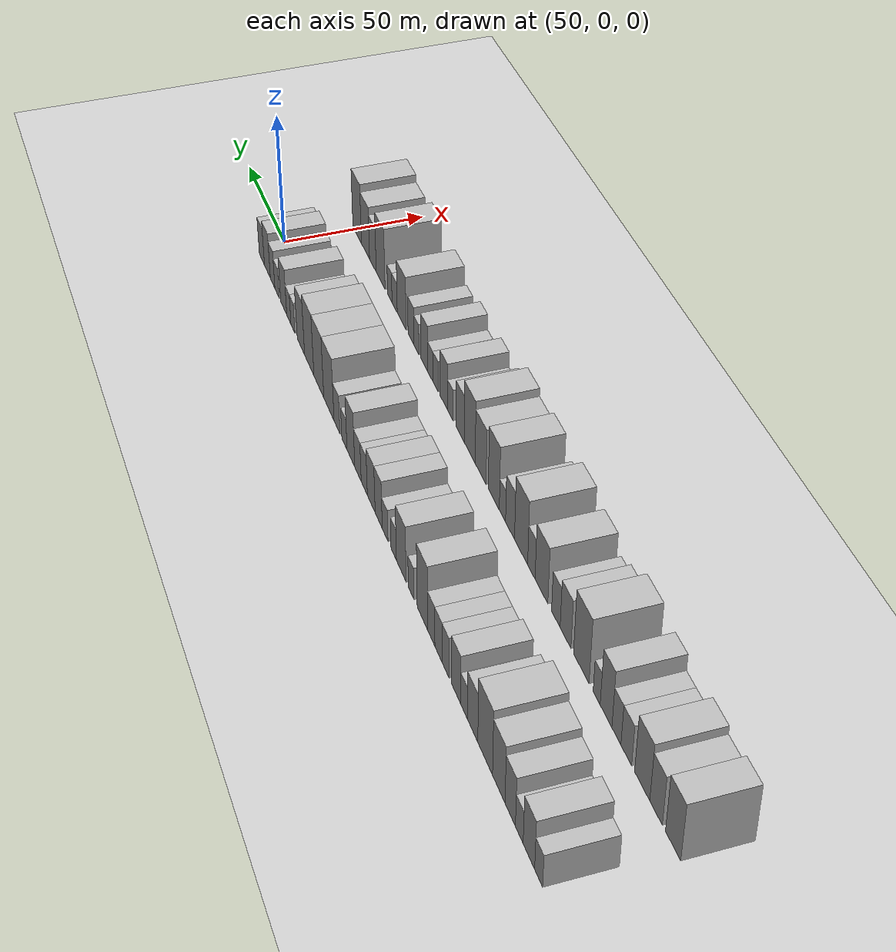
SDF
<sdf version="1.6">
 <world name="default">
  <include><name>ground_plane_1</name><uri>model://HANNAS_ground_plane</uri></include>
  <model name="building_1">
   <static>1</static>
   <pose>50.0000 -284.1563 0 0.000000 0.000000 0.000000</pose>
   <link name="link">
    <pose>0 0 6.00 0 0 0</pose>
    <collision name="collision"><geometry><box><size>20.0000 5.6873 12.0000</size></box></geometry></collision>
    <visual name="visual">
     <cast_shadows>0</cast_shadows>
     <geometry><box><size>20.0000 5.6873 12.0000</size></box></geometry>
     <material>
      <script>
       <uri>model://HANNAS_wall/materials/scripts</uri>
       <uri>model://HANNAS_wall/materials/textures</uri>
       <name>vrc/HANNAS_wall</name>
      </script>
     </material>
    </visual>
   </link>
  </model>
  <model name="building_2">
   <static>1</static>
   <pose>50.0000 -277.1323 0 0.000000 0.000000 0.000000</pose>
   <link name="link">
    <pose>0 0 9.00 0 0 0</pose>
    <collision name="collision"><geometry><box><size>20.0000 8.3608 18.0000</size></box></geometry></collision>
    <visual name="visual">
     <cast_shadows>0</cast_shadows>
     <geometry><box><size>20.0000 8.3608 18.0000</size></box></geometry>
     <material>
      <script>
       <uri>model://HANNAS_wall/materials/scripts</uri>
       <uri>model://HANNAS_wall/materials/textures</uri>
       <name>vrc/HANNAS_wall</name>
      </script>
     </material>
    </visual>
   </link>
  </model>
  <model name="building_3">
   <static>1</static>
   <pose>50.0000 -270.0940 0 0.000000 0.000000 0.000000</pose>
   <link name="link">
    <pose>0 0 6.00 0 0 0</pose>
    <collision name="collision"><geometry><box><size>20.0000 5.7157 12.0000</size></box></geometry></collision>
    <visual name="visual">
     <cast_shadows>0</cast_shadows>
     <geometry><box><size>20.0000 5.7157 12.0000</size></box></geometry>
     <material>
      <script>
       <uri>model://HANNAS_wall/materials/scripts</uri>
       <uri>model://HANNAS_wall/materials/textures</uri>
       <name>vrc/HANNAS_wall</name>
      </script>
     </material>
    </visual>
   </link>
  </model>
  <model name="building_4">
   <static>1</static>
   <pose>50.0000 -263.3036 0 0.000000 0.000000 0.000000</pose>
   <link name="link">
    <pose>0 0 9.00 0 0 0</pose>
    <collision name="collision"><geometry><box><size>20.0000 7.8652 18.0000</size></box></geometry></collision>
    <visual name="visual">
     <cast_shadows>0</cast_shadows>
     <geometry><box><size>20.0000 7.8652 18.0000</size></box></geometry>
     <material>
      <script>
       <uri>model://HANNAS_wall/materials/scripts</uri>
       <uri>model://HANNAS_wall/materials/textures</uri>
       <name>vrc/HANNAS_wall</name>
      </script>
     </material>
    </visual>
   </link>
  </model>
  <model name="building_5">
   <static>1</static>
   <pose>50.0000 -254.5456 0 0.000000 0.000000 0.000000</pose>
   <link name="link">
    <pose>0 0 10.50 0 0 0</pose>
    <collision name="collision"><geometry><box><size>20.0000 9.6508 21.0000</size></box></geometry></collision>
    <visual name="visual">
     <cast_shadows>0</cast_shadows>
     <geometry><box><size>20.0000 9.6508 21.0000</size></box></geometry>
     <material>
      <script>
       <uri>model://HANNAS_wall/materials/scripts</uri>
       <uri>model://HANNAS_wall/materials/textures</uri>
       <name>vrc/HANNAS_wall</name>
      </script>
     </material>
    </visual>
   </link>
  </model>
  <model name="building_6">
   <static>1</static>
   <pose>50.0000 -243.8503 0 0.000000 0.000000 0.000000</pose>
   <link name="link">
    <pose>0 0 12.00 0 0 0</pose>
    <collision name="collision"><geometry><box><size>20.0000 11.7398 24.0000</size></box></geometry></collision>
    <visual name="visual">
     <cast_shadows>0</cast_shadows>
     <geometry><box><size>20.0000 11.7398 24.0000</size></box></geometry>
     <material>
      <script>
       <uri>model://HANNAS_wall/materials/scripts</uri>
       <uri>model://HANNAS_wall/materials/textures</uri>
       <name>vrc/HANNAS_wall</name>
      </script>
     </material>
    </visual>
   </link>
  </model>
  <model name="building_7">
   <static>1</static>
   <pose>50.0000 -233.7689 0 0.000000 0.000000 0.000000</pose>
   <link name="link">
    <pose>0 0 9.00 0 0 0</pose>
    <collision name="collision"><geometry><box><size>20.0000 8.4229 18.0000</size></box></geometry></collision>
    <visual name="visual">
     <cast_shadows>0</cast_shadows>
     <geometry><box><size>20.0000 8.4229 18.0000</size></box></geometry>
     <material>
      <script>
       <uri>model://HANNAS_wall/materials/scripts</uri>
       <uri>model://HANNAS_wall/materials/textures</uri>
       <name>vrc/HANNAS_wall</name>
      </script>
     </material>
    </visual>
   </link>
  </model>
  <model name="building_8">
   <static>1</static>
   <pose>50.0000 -226.7244 0 0.000000 0.000000 0.000000</pose>
   <link name="link">
    <pose>0 0 6.00 0 0 0</pose>
    <collision name="collision"><geometry><box><size>20.0000 5.6663 12.0000</size></box></geometry></collision>
    <visual name="visual">
     <cast_shadows>0</cast_shadows>
     <geometry><box><size>20.0000 5.6663 12.0000</size></box></geometry>
     <material>
      <script>
       <uri>model://HANNAS_wall/materials/scripts</uri>
       <uri>model://HANNAS_wall/materials/textures</uri>
       <name>vrc/HANNAS_wall</name>
      </script>
     </material>
    </visual>
   </link>
  </model>
  <model name="building_9">
   <static>1</static>
   <pose>50.0000 -219.8994 0 0.000000 0.000000 0.000000</pose>
   <link name="link">
    <pose>0 0 9.00 0 0 0</pose>
    <collision name="collision"><geometry><box><size>20.0000 7.9838 18.0000</size></box></geometry></collision>
    <visual name="visual">
     <cast_shadows>0</cast_shadows>
     <geometry><box><size>20.0000 7.9838 18.0000</size></box></geometry>
     <material>
      <script>
       <uri>model://HANNAS_wall/materials/scripts</uri>
       <uri>model://HANNAS_wall/materials/textures</uri>
       <name>vrc/HANNAS_wall</name>
      </script>
     </material>
    </visual>
   </link>
  </model>
  <model name="building_10">
   <static>1</static>
   <pose>50.0000 -210.8327 0 0.000000 0.000000 0.000000</pose>
   <link name="link">
    <pose>0 0 7.50 0 0 0</pose>
    <collision name="collision"><geometry><box><size>20.0000 6.1495 15.0000</size></box></geometry></collision>
    <visual name="visual">
     <cast_shadows>0</cast_shadows>
     <geometry><box><size>20.0000 6.1495 15.0000</size></box></geometry>
     <material>
      <script>
       <uri>model://HANNAS_wall/materials/scripts</uri>
       <uri>model://HANNAS_wall/materials/textures</uri>
       <name>vrc/HANNAS_wall</name>
      </script>
     </material>
    </visual>
   </link>
  </model>
  <model name="building_11">
   <static>1</static>
   <pose>50.0000 -204.6135 0 0.000000 0.000000 0.000000</pose>
   <link name="link">
    <pose>0 0 7.50 0 0 0</pose>
    <collision name="collision"><geometry><box><size>20.0000 6.2890 15.0000</size></box></geometry></collision>
    <visual name="visual">
     <cast_shadows>0</cast_shadows>
     <geometry><box><size>20.0000 6.2890 15.0000</size></box></geometry>
     <material>
      <script>
       <uri>model://HANNAS_wall/materials/scripts</uri>
       <uri>model://HANNAS_wall/materials/textures</uri>
       <name>vrc/HANNAS_wall</name>
      </script>
     </material>
    </visual>
   </link>
  </model>
  <model name="building_12">
   <static>1</static>
   <pose>50.0000 -198.2615 0 0.000000 0.000000 0.000000</pose>
   <link name="link">
    <pose>0 0 7.50 0 0 0</pose>
    <collision name="collision"><geometry><box><size>20.0000 6.4150 15.0000</size></box></geometry></collision>
    <visual name="visual">
     <cast_shadows>0</cast_shadows>
     <geometry><box><size>20.0000 6.4150 15.0000</size></box></geometry>
     <material>
      <script>
       <uri>model://HANNAS_wall/materials/scripts</uri>
       <uri>model://HANNAS_wall/materials/textures</uri>
       <name>vrc/HANNAS_wall</name>
      </script>
     </material>
    </visual>
   </link>
  </model>
  <model name="building_13">
   <static>1</static>
   <pose>50.0000 -190.1850 0 0.000000 0.000000 0.000000</pose>
   <link name="link">
    <pose>0 0 12.00 0 0 0</pose>
    <collision name="collision"><geometry><box><size>20.0000 9.7380 24.0000</size></box></geometry></collision>
    <visual name="visual">
     <cast_shadows>0</cast_shadows>
     <geometry><box><size>20.0000 9.7380 24.0000</size></box></geometry>
     <material>
      <script>
       <uri>model://HANNAS_wall/materials/scripts</uri>
       <uri>model://HANNAS_wall/materials/textures</uri>
       <name>vrc/HANNAS_wall</name>
      </script>
     </material>
    </visual>
   </link>
  </model>
  <model name="building_14">
   <static>1</static>
   <pose>50.0000 -179.6250 0 0.000000 0.000000 0.000000</pose>
   <link name="link">
    <pose>0 0 6.00 0 0 0</pose>
    <collision name="collision"><geometry><box><size>20.0000 5.3820 12.0000</size></box></geometry></collision>
    <visual name="visual">
     <cast_shadows>0</cast_shadows>
     <geometry><box><size>20.0000 5.3820 12.0000</size></box></geometry>
     <material>
      <script>
       <uri>model://HANNAS_wall/materials/scripts</uri>
       <uri>model://HANNAS_wall/materials/textures</uri>
       <name>vrc/HANNAS_wall</name>
      </script>
     </material>
    </visual>
   </link>
  </model>
  <model name="building_15">
   <static>1</static>
   <pose>50.0000 -170.2009 0 0.000000 0.000000 0.000000</pose>
   <link name="link">
    <pose>0 0 10.50 0 0 0</pose>
    <collision name="collision"><geometry><box><size>20.0000 9.4661 21.0000</size></box></geometry></collision>
    <visual name="visual">
     <cast_shadows>0</cast_shadows>
     <geometry><box><size>20.0000 9.4661 21.0000</size></box></geometry>
     <material>
      <script>
       <uri>model://HANNAS_wall/materials/scripts</uri>
       <uri>model://HANNAS_wall/materials/textures</uri>
       <name>vrc/HANNAS_wall</name>
      </script>
     </material>
    </visual>
   </link>
  </model>
  <model name="building_16">
   <static>1</static>
   <pose>50.0000 -162.8109 0 0.000000 0.000000 0.000000</pose>
   <link name="link">
    <pose>0 0 6.00 0 0 0</pose>
    <collision name="collision"><geometry><box><size>20.0000 5.3140 12.0000</size></box></geometry></collision>
    <visual name="visual">
     <cast_shadows>0</cast_shadows>
     <geometry><box><size>20.0000 5.3140 12.0000</size></box></geometry>
     <material>
      <script>
       <uri>model://HANNAS_wall/materials/scripts</uri>
       <uri>model://HANNAS_wall/materials/textures</uri>
       <name>vrc/HANNAS_wall</name>
      </script>
     </material>
    </visual>
   </link>
  </model>
  <model name="building_17">
   <static>1</static>
   <pose>50.0000 -154.2552 0 0.000000 0.000000 0.000000</pose>
   <link name="link">
    <pose>0 0 6.00 0 0 0</pose>
    <collision name="collision"><geometry><box><size>20.0000 5.7974 12.0000</size></box></geometry></collision>
    <visual name="visual">
     <cast_shadows>0</cast_shadows>
     <geometry><box><size>20.0000 5.7974 12.0000</size></box></geometry>
     <material>
      <script>
       <uri>model://HANNAS_wall/materials/scripts</uri>
       <uri>model://HANNAS_wall/materials/textures</uri>
       <name>vrc/HANNAS_wall</name>
      </script>
     </material>
    </visual>
   </link>
  </model>
  <model name="building_18">
   <static>1</static>
   <pose>50.0000 -147.7328 0 0.000000 0.000000 0.000000</pose>
   <link name="link">
    <pose>0 0 9.00 0 0 0</pose>
    <collision name="collision"><geometry><box><size>20.0000 7.2473 18.0000</size></box></geometry></collision>
    <visual name="visual">
     <cast_shadows>0</cast_shadows>
     <geometry><box><size>20.0000 7.2473 18.0000</size></box></geometry>
     <material>
      <script>
       <uri>model://HANNAS_wall/materials/scripts</uri>
       <uri>model://HANNAS_wall/materials/textures</uri>
       <name>vrc/HANNAS_wall</name>
      </script>
     </material>
    </visual>
   </link>
  </model>
  <model name="building_19">
   <static>1</static>
   <pose>50.0000 -140.0425 0 0.000000 0.000000 0.000000</pose>
   <link name="link">
    <pose>0 0 9.00 0 0 0</pose>
    <collision name="collision"><geometry><box><size>20.0000 8.1334 18.0000</size></box></geometry></collision>
    <visual name="visual">
     <cast_shadows>0</cast_shadows>
     <geometry><box><size>20.0000 8.1334 18.0000</size></box></geometry>
     <material>
      <script>
       <uri>model://HANNAS_wall/materials/scripts</uri>
       <uri>model://HANNAS_wall/materials/textures</uri>
       <name>vrc/HANNAS_wall</name>
      </script>
     </material>
    </visual>
   </link>
  </model>
  <model name="building_20">
   <static>1</static>
   <pose>50.0000 -132.7113 0 0.000000 0.000000 0.000000</pose>
   <link name="link">
    <pose>0 0 7.50 0 0 0</pose>
    <collision name="collision"><geometry><box><size>20.0000 6.5290 15.0000</size></box></geometry></collision>
    <visual name="visual">
     <cast_shadows>0</cast_shadows>
     <geometry><box><size>20.0000 6.5290 15.0000</size></box></geometry>
     <material>
      <script>
       <uri>model://HANNAS_wall/materials/scripts</uri>
       <uri>model://HANNAS_wall/materials/textures</uri>
       <name>vrc/HANNAS_wall</name>
      </script>
     </material>
    </visual>
   </link>
  </model>
  <model name="building_21">
   <static>1</static>
   <pose>50.0000 -125.9997 0 0.000000 0.000000 0.000000</pose>
   <link name="link">
    <pose>0 0 7.50 0 0 0</pose>
    <collision name="collision"><geometry><box><size>20.0000 6.8943 15.0000</size></box></geometry></collision>
    <visual name="visual">
     <cast_shadows>0</cast_shadows>
     <geometry><box><size>20.0000 6.8943 15.0000</size></box></geometry>
     <material>
      <script>
       <uri>model://HANNAS_wall/materials/scripts</uri>
       <uri>model://HANNAS_wall/materials/textures</uri>
       <name>vrc/HANNAS_wall</name>
      </script>
     </material>
    </visual>
   </link>
  </model>
  <model name="building_22">
   <static>1</static>
   <pose>50.0000 -118.2893 0 0.000000 0.000000 0.000000</pose>
   <link name="link">
    <pose>0 0 10.50 0 0 0</pose>
    <collision name="collision"><geometry><box><size>20.0000 8.5265 21.0000</size></box></geometry></collision>
    <visual name="visual">
     <cast_shadows>0</cast_shadows>
     <geometry><box><size>20.0000 8.5265 21.0000</size></box></geometry>
     <material>
      <script>
       <uri>model://HANNAS_wall/materials/scripts</uri>
       <uri>model://HANNAS_wall/materials/textures</uri>
       <name>vrc/HANNAS_wall</name>
      </script>
     </material>
    </visual>
   </link>
  </model>
  <model name="building_23">
   <static>1</static>
   <pose>50.0000 -111.1062 0 0.000000 0.000000 0.000000</pose>
   <link name="link">
    <pose>0 0 6.00 0 0 0</pose>
    <collision name="collision"><geometry><box><size>20.0000 5.8397 12.0000</size></box></geometry></collision>
    <visual name="visual">
     <cast_shadows>0</cast_shadows>
     <geometry><box><size>20.0000 5.8397 12.0000</size></box></geometry>
     <material>
      <script>
       <uri>model://HANNAS_wall/materials/scripts</uri>
       <uri>model://HANNAS_wall/materials/textures</uri>
       <name>vrc/HANNAS_wall</name>
      </script>
     </material>
    </visual>
   </link>
  </model>
  <model name="building_24">
   <static>1</static>
   <pose>50.0000 -102.7975 0 0.000000 0.000000 0.000000</pose>
   <link name="link">
    <pose>0 0 7.50 0 0 0</pose>
    <collision name="collision"><geometry><box><size>20.0000 6.7777 15.0000</size></box></geometry></collision>
    <visual name="visual">
     <cast_shadows>0</cast_shadows>
     <geometry><box><size>20.0000 6.7777 15.0000</size></box></geometry>
     <material>
      <script>
       <uri>model://HANNAS_wall/materials/scripts</uri>
       <uri>model://HANNAS_wall/materials/textures</uri>
       <name>vrc/HANNAS_wall</name>
      </script>
     </material>
    </visual>
   </link>
  </model>
  <model name="building_25">
   <static>1</static>
   <pose>50.0000 -93.4668 0 0.000000 0.000000 0.000000</pose>
   <link name="link">
    <pose>0 0 12.00 0 0 0</pose>
    <collision name="collision"><geometry><box><size>20.0000 11.8837 24.0000</size></box></geometry></collision>
    <visual name="visual">
     <cast_shadows>0</cast_shadows>
     <geometry><box><size>20.0000 11.8837 24.0000</size></box></geometry>
     <material>
      <script>
       <uri>model://HANNAS_wall/materials/scripts</uri>
       <uri>model://HANNAS_wall/materials/textures</uri>
       <name>vrc/HANNAS_wall</name>
      </script>
     </material>
    </visual>
   </link>
  </model>
  <model name="building_26">
   <static>1</static>
   <pose>50.0000 -81.6182 0 0.000000 0.000000 0.000000</pose>
   <link name="link">
    <pose>0 0 12.00 0 0 0</pose>
    <collision name="collision"><geometry><box><size>20.0000 11.8136 24.0000</size></box></geometry></collision>
    <visual name="visual">
     <cast_shadows>0</cast_shadows>
     <geometry><box><size>20.0000 11.8136 24.0000</size></box></geometry>
     <material>
      <script>
       <uri>model://HANNAS_wall/materials/scripts</uri>
       <uri>model://HANNAS_wall/materials/textures</uri>
       <name>vrc/HANNAS_wall</name>
      </script>
     </material>
    </visual>
   </link>
  </model>
  <model name="building_27">
   <static>1</static>
   <pose>50.0000 -70.0026 0 0.000000 0.000000 0.000000</pose>
   <link name="link">
    <pose>0 0 12.00 0 0 0</pose>
    <collision name="collision"><geometry><box><size>20.0000 11.4176 24.0000</size></box></geometry></collision>
    <visual name="visual">
     <cast_shadows>0</cast_shadows>
     <geometry><box><size>20.0000 11.4176 24.0000</size></box></geometry>
     <material>
      <script>
       <uri>model://HANNAS_wall/materials/scripts</uri>
       <uri>model://HANNAS_wall/materials/textures</uri>
       <name>vrc/HANNAS_wall</name>
      </script>
     </material>
    </visual>
   </link>
  </model>
  <model name="building_28">
   <static>1</static>
   <pose>50.0000 -59.6757 0 0.000000 0.000000 0.000000</pose>
   <link name="link">
    <pose>0 0 10.50 0 0 0</pose>
    <collision name="collision"><geometry><box><size>20.0000 9.2361 21.0000</size></box></geometry></collision>
    <visual name="visual">
     <cast_shadows>0</cast_shadows>
     <geometry><box><size>20.0000 9.2361 21.0000</size></box></geometry>
     <material>
      <script>
       <uri>model://HANNAS_wall/materials/scripts</uri>
       <uri>model://HANNAS_wall/materials/textures</uri>
       <name>vrc/HANNAS_wall</name>
      </script>
     </material>
    </visual>
   </link>
  </model>
  <model name="building_29">
   <static>1</static>
   <pose>50.0000 -49.5209 0 0.000000 0.000000 0.000000</pose>
   <link name="link">
    <pose>0 0 6.00 0 0 0</pose>
    <collision name="collision"><geometry><box><size>20.0000 5.0735 12.0000</size></box></geometry></collision>
    <visual name="visual">
     <cast_shadows>0</cast_shadows>
     <geometry><box><size>20.0000 5.0735 12.0000</size></box></geometry>
     <material>
      <script>
       <uri>model://HANNAS_wall/materials/scripts</uri>
       <uri>model://HANNAS_wall/materials/textures</uri>
       <name>vrc/HANNAS_wall</name>
      </script>
     </material>
    </visual>
   </link>
  </model>
  <model name="building_30">
   <static>1</static>
   <pose>50.0000 -44.2629 0 0.000000 0.000000 0.000000</pose>
   <link name="link">
    <pose>0 0 6.00 0 0 0</pose>
    <collision name="collision"><geometry><box><size>20.0000 5.4425 12.0000</size></box></geometry></collision>
    <visual name="visual">
     <cast_shadows>0</cast_shadows>
     <geometry><box><size>20.0000 5.4425 12.0000</size></box></geometry>
     <material>
      <script>
       <uri>model://HANNAS_wall/materials/scripts</uri>
       <uri>model://HANNAS_wall/materials/textures</uri>
       <name>vrc/HANNAS_wall</name>
      </script>
     </material>
    </visual>
   </link>
  </model>
  <model name="building_31">
   <static>1</static>
   <pose>50.0000 -37.5939 0 0.000000 0.000000 0.000000</pose>
   <link name="link">
    <pose>0 0 9.00 0 0 0</pose>
    <collision name="collision"><geometry><box><size>20.0000 7.8954 18.0000</size></box></geometry></collision>
    <visual name="visual">
     <cast_shadows>0</cast_shadows>
     <geometry><box><size>20.0000 7.8954 18.0000</size></box></geometry>
     <material>
      <script>
       <uri>model://HANNAS_wall/materials/scripts</uri>
       <uri>model://HANNAS_wall/materials/textures</uri>
       <name>vrc/HANNAS_wall</name>
      </script>
     </material>
    </visual>
   </link>
  </model>
  <model name="building_32">
   <static>1</static>
   <pose>50.0000 -28.7165 0 0.000000 0.000000 0.000000</pose>
   <link name="link">
    <pose>0 0 6.00 0 0 0</pose>
    <collision name="collision"><geometry><box><size>20.0000 5.8594 12.0000</size></box></geometry></collision>
    <visual name="visual">
     <cast_shadows>0</cast_shadows>
     <geometry><box><size>20.0000 5.8594 12.0000</size></box></geometry>
     <material>
      <script>
       <uri>model://HANNAS_wall/materials/scripts</uri>
       <uri>model://HANNAS_wall/materials/textures</uri>
       <name>vrc/HANNAS_wall</name>
      </script>
     </material>
    </visual>
   </link>
  </model>
  <model name="building_33">
   <static>1</static>
   <pose>50.0000 -22.7319 0 0.000000 0.000000 0.000000</pose>
   <link name="link">
    <pose>0 0 7.50 0 0 0</pose>
    <collision name="collision"><geometry><box><size>20.0000 6.1098 15.0000</size></box></geometry></collision>
    <visual name="visual">
     <cast_shadows>0</cast_shadows>
     <geometry><box><size>20.0000 6.1098 15.0000</size></box></geometry>
     <material>
      <script>
       <uri>model://HANNAS_wall/materials/scripts</uri>
       <uri>model://HANNAS_wall/materials/textures</uri>
       <name>vrc/HANNAS_wall</name>
      </script>
     </material>
    </visual>
   </link>
  </model>
  <model name="building_34">
   <static>1</static>
   <pose>50.0000 -15.6095 0 0.000000 0.000000 0.000000</pose>
   <link name="link">
    <pose>0 0 9.00 0 0 0</pose>
    <collision name="collision"><geometry><box><size>20.0000 8.1350 18.0000</size></box></geometry></collision>
    <visual name="visual">
     <cast_shadows>0</cast_shadows>
     <geometry><box><size>20.0000 8.1350 18.0000</size></box></geometry>
     <material>
      <script>
       <uri>model://HANNAS_wall/materials/scripts</uri>
       <uri>model://HANNAS_wall/materials/textures</uri>
       <name>vrc/HANNAS_wall</name>
      </script>
     </material>
    </visual>
   </link>
  </model>
  <model name="building_35">
   <static>1</static>
   <pose>50.0000 -7.9999 0 0.000000 0.000000 0.000000</pose>
   <link name="link">
    <pose>0 0 7.50 0 0 0</pose>
    <collision name="collision"><geometry><box><size>20.0000 7.0841 15.0000</size></box></geometry></collision>
    <visual name="visual">
     <cast_shadows>0</cast_shadows>
     <geometry><box><size>20.0000 7.0841 15.0000</size></box></geometry>
     <material>
      <script>
       <uri>model://HANNAS_wall/materials/scripts</uri>
       <uri>model://HANNAS_wall/materials/textures</uri>
       <name>vrc/HANNAS_wall</name>
      </script>
     </material>
    </visual>
   </link>
  </model>
  <model name="building_71">
   <static>1</static>
   <pose>85.0000 -285.1316 0 0.000000 0.000000 0.000000</pose>
   <link name="link">
    <pose>0 0 10.50 0 0 0</pose>
    <collision name="collision"><geometry><box><size>20.0000 9.7368 21.0000</size></box></geometry></collision>
    <visual name="visual">
     <cast_shadows>0</cast_shadows>
     <geometry><box><size>20.0000 9.7368 21.0000</size></box></geometry>
     <material>
      <script>
       <uri>model://HANNAS_wall/materials/scripts</uri>
       <uri>model://HANNAS_wall/materials/textures</uri>
       <name>vrc/HANNAS_wall</name>
      </script>
     </material>
    </visual>
   </link>
  </model>
  <model name="building_72">
   <static>1</static>
   <pose>85.0000 -274.1396 0 0.000000 0.000000 0.000000</pose>
   <link name="link">
    <pose>0 0 9.00 0 0 0</pose>
    <collision name="collision"><geometry><box><size>20.0000 8.2472 18.0000</size></box></geometry></collision>
    <visual name="visual">
     <cast_shadows>0</cast_shadows>
     <geometry><box><size>20.0000 8.2472 18.0000</size></box></geometry>
     <material>
      <script>
       <uri>model://HANNAS_wall/materials/scripts</uri>
       <uri>model://HANNAS_wall/materials/textures</uri>
       <name>vrc/HANNAS_wall</name>
      </script>
     </material>
    </visual>
   </link>
  </model>
  <model name="building_73">
   <static>1</static>
   <pose>85.0000 -264.9320 0 0.000000 0.000000 0.000000</pose>
   <link name="link">
    <pose>0 0 10.50 0 0 0</pose>
    <collision name="collision"><geometry><box><size>20.0000 10.1680 21.0000</size></box></geometry></collision>
    <visual name="visual">
     <cast_shadows>0</cast_shadows>
     <geometry><box><size>20.0000 10.1680 21.0000</size></box></geometry>
     <material>
      <script>
       <uri>model://HANNAS_wall/materials/scripts</uri>
       <uri>model://HANNAS_wall/materials/textures</uri>
       <name>vrc/HANNAS_wall</name>
      </script>
     </material>
    </visual>
   </link>
  </model>
  <model name="building_74">
   <static>1</static>
   <pose>85.0000 -254.1271 0 0.000000 0.000000 0.000000</pose>
   <link name="link">
    <pose>0 0 7.50 0 0 0</pose>
    <collision name="collision"><geometry><box><size>20.0000 7.4417 15.0000</size></box></geometry></collision>
    <visual name="visual">
     <cast_shadows>0</cast_shadows>
     <geometry><box><size>20.0000 7.4417 15.0000</size></box></geometry>
     <material>
      <script>
       <uri>model://HANNAS_wall/materials/scripts</uri>
       <uri>model://HANNAS_wall/materials/textures</uri>
       <name>vrc/HANNAS_wall</name>
      </script>
     </material>
    </visual>
   </link>
  </model>
  <model name="building_75">
   <static>1</static>
   <pose>85.0000 -247.2361 0 0.000000 0.000000 0.000000</pose>
   <link name="link">
    <pose>0 0 7.50 0 0 0</pose>
    <collision name="collision"><geometry><box><size>20.0000 6.3403 15.0000</size></box></geometry></collision>
    <visual name="visual">
     <cast_shadows>0</cast_shadows>
     <geometry><box><size>20.0000 6.3403 15.0000</size></box></geometry>
     <material>
      <script>
       <uri>model://HANNAS_wall/materials/scripts</uri>
       <uri>model://HANNAS_wall/materials/textures</uri>
       <name>vrc/HANNAS_wall</name>
      </script>
     </material>
    </visual>
   </link>
  </model>
  <model name="building_76">
   <static>1</static>
   <pose>85.0000 -239.8442 0 0.000000 0.000000 0.000000</pose>
   <link name="link">
    <pose>0 0 10.50 0 0 0</pose>
    <collision name="collision"><geometry><box><size>20.0000 8.4434 21.0000</size></box></geometry></collision>
    <visual name="visual">
     <cast_shadows>0</cast_shadows>
     <geometry><box><size>20.0000 8.4434 21.0000</size></box></geometry>
     <material>
      <script>
       <uri>model://HANNAS_wall/materials/scripts</uri>
       <uri>model://HANNAS_wall/materials/textures</uri>
       <name>vrc/HANNAS_wall</name>
      </script>
     </material>
    </visual>
   </link>
  </model>
  <model name="building_77">
   <static>1</static>
   <pose>85.0000 -233.0594 0 0.000000 0.000000 0.000000</pose>
   <link name="link">
    <pose>0 0 6.00 0 0 0</pose>
    <collision name="collision"><geometry><box><size>20.0000 5.1262 12.0000</size></box></geometry></collision>
    <visual name="visual">
     <cast_shadows>0</cast_shadows>
     <geometry><box><size>20.0000 5.1262 12.0000</size></box></geometry>
     <material>
      <script>
       <uri>model://HANNAS_wall/materials/scripts</uri>
       <uri>model://HANNAS_wall/materials/textures</uri>
       <name>vrc/HANNAS_wall</name>
      </script>
     </material>
    </visual>
   </link>
  </model>
  <model name="building_78">
   <static>1</static>
   <pose>85.0000 -221.6132 0 0.000000 0.000000 0.000000</pose>
   <link name="link">
    <pose>0 0 12.00 0 0 0</pose>
    <collision name="collision"><geometry><box><size>20.0000 11.7661 24.0000</size></box></geometry></collision>
    <visual name="visual">
     <cast_shadows>0</cast_shadows>
     <geometry><box><size>20.0000 11.7661 24.0000</size></box></geometry>
     <material>
      <script>
       <uri>model://HANNAS_wall/materials/scripts</uri>
       <uri>model://HANNAS_wall/materials/textures</uri>
       <name>vrc/HANNAS_wall</name>
      </script>
     </material>
    </visual>
   </link>
  </model>
  <model name="building_79">
   <static>1</static>
   <pose>85.0000 -209.5154 0 0.000000 0.000000 0.000000</pose>
   <link name="link">
    <pose>0 0 9.00 0 0 0</pose>
    <collision name="collision"><geometry><box><size>20.0000 8.4295 18.0000</size></box></geometry></collision>
    <visual name="visual">
     <cast_shadows>0</cast_shadows>
     <geometry><box><size>20.0000 8.4295 18.0000</size></box></geometry>
     <material>
      <script>
       <uri>model://HANNAS_wall/materials/scripts</uri>
       <uri>model://HANNAS_wall/materials/textures</uri>
       <name>vrc/HANNAS_wall</name>
      </script>
     </material>
    </visual>
   </link>
  </model>
  <model name="building_80">
   <static>1</static>
   <pose>85.0000 -201.8954 0 0.000000 0.000000 0.000000</pose>
   <link name="link">
    <pose>0 0 7.50 0 0 0</pose>
    <collision name="collision"><geometry><box><size>20.0000 6.8106 15.0000</size></box></geometry></collision>
    <visual name="visual">
     <cast_shadows>0</cast_shadows>
     <geometry><box><size>20.0000 6.8106 15.0000</size></box></geometry>
     <material>
      <script>
       <uri>model://HANNAS_wall/materials/scripts</uri>
       <uri>model://HANNAS_wall/materials/textures</uri>
       <name>vrc/HANNAS_wall</name>
      </script>
     </material>
    </visual>
   </link>
  </model>
  <model name="building_81">
   <static>1</static>
   <pose>85.0000 -190.2749 0 0.000000 0.000000 0.000000</pose>
   <link name="link">
    <pose>0 0 10.50 0 0 0</pose>
    <collision name="collision"><geometry><box><size>20.0000 10.4303 21.0000</size></box></geometry></collision>
    <visual name="visual">
     <cast_shadows>0</cast_shadows>
     <geometry><box><size>20.0000 10.4303 21.0000</size></box></geometry>
     <material>
      <script>
       <uri>model://HANNAS_wall/materials/scripts</uri>
       <uri>model://HANNAS_wall/materials/textures</uri>
       <name>vrc/HANNAS_wall</name>
      </script>
     </material>
    </visual>
   </link>
  </model>
  <model name="building_82">
   <static>1</static>
   <pose>85.0000 -181.9443 0 0.000000 0.000000 0.000000</pose>
   <link name="link">
    <pose>0 0 7.50 0 0 0</pose>
    <collision name="collision"><geometry><box><size>20.0000 6.2308 15.0000</size></box></geometry></collision>
    <visual name="visual">
     <cast_shadows>0</cast_shadows>
     <geometry><box><size>20.0000 6.2308 15.0000</size></box></geometry>
     <material>
      <script>
       <uri>model://HANNAS_wall/materials/scripts</uri>
       <uri>model://HANNAS_wall/materials/textures</uri>
       <name>vrc/HANNAS_wall</name>
      </script>
     </material>
    </visual>
   </link>
  </model>
  <model name="building_83">
   <static>1</static>
   <pose>85.0000 -173.2291 0 0.000000 0.000000 0.000000</pose>
   <link name="link">
    <pose>0 0 12.00 0 0 0</pose>
    <collision name="collision"><geometry><box><size>20.0000 11.1995 24.0000</size></box></geometry></collision>
    <visual name="visual">
     <cast_shadows>0</cast_shadows>
     <geometry><box><size>20.0000 11.1995 24.0000</size></box></geometry>
     <material>
      <script>
       <uri>model://HANNAS_wall/materials/scripts</uri>
       <uri>model://HANNAS_wall/materials/textures</uri>
       <name>vrc/HANNAS_wall</name>
      </script>
     </material>
    </visual>
   </link>
  </model>
  <model name="building_84">
   <static>1</static>
   <pose>85.0000 -163.7203 0 0.000000 0.000000 0.000000</pose>
   <link name="link">
    <pose>0 0 9.00 0 0 0</pose>
    <collision name="collision"><geometry><box><size>20.0000 7.8181 18.0000</size></box></geometry></collision>
    <visual name="visual">
     <cast_shadows>0</cast_shadows>
     <geometry><box><size>20.0000 7.8181 18.0000</size></box></geometry>
     <material>
      <script>
       <uri>model://HANNAS_wall/materials/scripts</uri>
       <uri>model://HANNAS_wall/materials/textures</uri>
       <name>vrc/HANNAS_wall</name>
      </script>
     </material>
    </visual>
   </link>
  </model>
  <model name="building_85">
   <static>1</static>
   <pose>85.0000 -157.0328 0 0.000000 0.000000 0.000000</pose>
   <link name="link">
    <pose>0 0 6.00 0 0 0</pose>
    <collision name="collision"><geometry><box><size>20.0000 5.5569 12.0000</size></box></geometry></collision>
    <visual name="visual">
     <cast_shadows>0</cast_shadows>
     <geometry><box><size>20.0000 5.5569 12.0000</size></box></geometry>
     <material>
      <script>
       <uri>model://HANNAS_wall/materials/scripts</uri>
       <uri>model://HANNAS_wall/materials/textures</uri>
       <name>vrc/HANNAS_wall</name>
      </script>
     </material>
    </visual>
   </link>
  </model>
  <model name="building_86">
   <static>1</static>
   <pose>85.0000 -149.2617 0 0.000000 0.000000 0.000000</pose>
   <link name="link">
    <pose>0 0 12.00 0 0 0</pose>
    <collision name="collision"><geometry><box><size>20.0000 9.9852 24.0000</size></box></geometry></collision>
    <visual name="visual">
     <cast_shadows>0</cast_shadows>
     <geometry><box><size>20.0000 9.9852 24.0000</size></box></geometry>
     <material>
      <script>
       <uri>model://HANNAS_wall/materials/scripts</uri>
       <uri>model://HANNAS_wall/materials/textures</uri>
       <name>vrc/HANNAS_wall</name>
      </script>
     </material>
    </visual>
   </link>
  </model>
  <model name="building_87">
   <static>1</static>
   <pose>85.0000 -137.2307 0 0.000000 0.000000 0.000000</pose>
   <link name="link">
    <pose>0 0 10.50 0 0 0</pose>
    <collision name="collision"><geometry><box><size>20.0000 10.0769 21.0000</size></box></geometry></collision>
    <visual name="visual">
     <cast_shadows>0</cast_shadows>
     <geometry><box><size>20.0000 10.0769 21.0000</size></box></geometry>
     <material>
      <script>
       <uri>model://HANNAS_wall/materials/scripts</uri>
       <uri>model://HANNAS_wall/materials/textures</uri>
       <name>vrc/HANNAS_wall</name>
      </script>
     </material>
    </visual>
   </link>
  </model>
  <model name="building_88">
   <static>1</static>
   <pose>85.0000 -126.8815 0 0.000000 0.000000 0.000000</pose>
   <link name="link">
    <pose>0 0 12.00 0 0 0</pose>
    <collision name="collision"><geometry><box><size>20.0000 10.6216 24.0000</size></box></geometry></collision>
    <visual name="visual">
     <cast_shadows>0</cast_shadows>
     <geometry><box><size>20.0000 10.6216 24.0000</size></box></geometry>
     <material>
      <script>
       <uri>model://HANNAS_wall/materials/scripts</uri>
       <uri>model://HANNAS_wall/materials/textures</uri>
       <name>vrc/HANNAS_wall</name>
      </script>
     </material>
    </visual>
   </link>
  </model>
  <model name="building_89">
   <static>1</static>
   <pose>85.0000 -117.6487 0 0.000000 0.000000 0.000000</pose>
   <link name="link">
    <pose>0 0 9.00 0 0 0</pose>
    <collision name="collision"><geometry><box><size>20.0000 7.8439 18.0000</size></box></geometry></collision>
    <visual name="visual">
     <cast_shadows>0</cast_shadows>
     <geometry><box><size>20.0000 7.8439 18.0000</size></box></geometry>
     <material>
      <script>
       <uri>model://HANNAS_wall/materials/scripts</uri>
       <uri>model://HANNAS_wall/materials/textures</uri>
       <name>vrc/HANNAS_wall</name>
      </script>
     </material>
    </visual>
   </link>
  </model>
  <model name="building_90">
   <static>1</static>
   <pose>85.0000 -107.9802 0 0.000000 0.000000 0.000000</pose>
   <link name="link">
    <pose>0 0 6.00 0 0 0</pose>
    <collision name="collision"><geometry><box><size>20.0000 5.4931 12.0000</size></box></geometry></collision>
    <visual name="visual">
     <cast_shadows>0</cast_shadows>
     <geometry><box><size>20.0000 5.4931 12.0000</size></box></geometry>
     <material>
      <script>
       <uri>model://HANNAS_wall/materials/scripts</uri>
       <uri>model://HANNAS_wall/materials/textures</uri>
       <name>vrc/HANNAS_wall</name>
      </script>
     </material>
    </visual>
   </link>
  </model>
  <model name="building_91">
   <static>1</static>
   <pose>85.0000 -101.4281 0 0.000000 0.000000 0.000000</pose>
   <link name="link">
    <pose>0 0 9.00 0 0 0</pose>
    <collision name="collision"><geometry><box><size>20.0000 7.6112 18.0000</size></box></geometry></collision>
    <visual name="visual">
     <cast_shadows>0</cast_shadows>
     <geometry><box><size>20.0000 7.6112 18.0000</size></box></geometry>
     <material>
      <script>
       <uri>model://HANNAS_wall/materials/scripts</uri>
       <uri>model://HANNAS_wall/materials/textures</uri>
       <name>vrc/HANNAS_wall</name>
      </script>
     </material>
    </visual>
   </link>
  </model>
  <model name="building_92">
   <static>1</static>
   <pose>85.0000 -92.8649 0 0.000000 0.000000 0.000000</pose>
   <link name="link">
    <pose>0 0 6.00 0 0 0</pose>
    <collision name="collision"><geometry><box><size>20.0000 5.5152 12.0000</size></box></geometry></collision>
    <visual name="visual">
     <cast_shadows>0</cast_shadows>
     <geometry><box><size>20.0000 5.5152 12.0000</size></box></geometry>
     <material>
      <script>
       <uri>model://HANNAS_wall/materials/scripts</uri>
       <uri>model://HANNAS_wall/materials/textures</uri>
       <name>vrc/HANNAS_wall</name>
      </script>
     </material>
    </visual>
   </link>
  </model>
  <model name="building_93">
   <static>1</static>
   <pose>85.0000 -87.4809 0 0.000000 0.000000 0.000000</pose>
   <link name="link">
    <pose>0 0 6.00 0 0 0</pose>
    <collision name="collision"><geometry><box><size>20.0000 5.2529 12.0000</size></box></geometry></collision>
    <visual name="visual">
     <cast_shadows>0</cast_shadows>
     <geometry><box><size>20.0000 5.2529 12.0000</size></box></geometry>
     <material>
      <script>
       <uri>model://HANNAS_wall/materials/scripts</uri>
       <uri>model://HANNAS_wall/materials/textures</uri>
       <name>vrc/HANNAS_wall</name>
      </script>
     </material>
    </visual>
   </link>
  </model>
  <model name="building_94">
   <static>1</static>
   <pose>85.0000 -81.1944 0 0.000000 0.000000 0.000000</pose>
   <link name="link">
    <pose>0 0 9.00 0 0 0</pose>
    <collision name="collision"><geometry><box><size>20.0000 7.3200 18.0000</size></box></geometry></collision>
    <visual name="visual">
     <cast_shadows>0</cast_shadows>
     <geometry><box><size>20.0000 7.3200 18.0000</size></box></geometry>
     <material>
      <script>
       <uri>model://HANNAS_wall/materials/scripts</uri>
       <uri>model://HANNAS_wall/materials/textures</uri>
       <name>vrc/HANNAS_wall</name>
      </script>
     </material>
    </visual>
   </link>
  </model>
  <model name="building_95">
   <static>1</static>
   <pose>85.0000 -72.8928 0 0.000000 0.000000 0.000000</pose>
   <link name="link">
    <pose>0 0 6.00 0 0 0</pose>
    <collision name="collision"><geometry><box><size>20.0000 5.2834 12.0000</size></box></geometry></collision>
    <visual name="visual">
     <cast_shadows>0</cast_shadows>
     <geometry><box><size>20.0000 5.2834 12.0000</size></box></geometry>
     <material>
      <script>
       <uri>model://HANNAS_wall/materials/scripts</uri>
       <uri>model://HANNAS_wall/materials/textures</uri>
       <name>vrc/HANNAS_wall</name>
      </script>
     </material>
    </visual>
   </link>
  </model>
  <model name="building_96">
   <static>1</static>
   <pose>85.0000 -66.9604 0 0.000000 0.000000 0.000000</pose>
   <link name="link">
    <pose>0 0 7.50 0 0 0</pose>
    <collision name="collision"><geometry><box><size>20.0000 6.5813 15.0000</size></box></geometry></collision>
    <visual name="visual">
     <cast_shadows>0</cast_shadows>
     <geometry><box><size>20.0000 6.5813 15.0000</size></box></geometry>
     <material>
      <script>
       <uri>model://HANNAS_wall/materials/scripts</uri>
       <uri>model://HANNAS_wall/materials/textures</uri>
       <name>vrc/HANNAS_wall</name>
      </script>
     </material>
    </visual>
   </link>
  </model>
  <model name="building_97">
   <static>1</static>
   <pose>85.0000 -56.6427 0 0.000000 0.000000 0.000000</pose>
   <link name="link">
    <pose>0 0 10.50 0 0 0</pose>
    <collision name="collision"><geometry><box><size>20.0000 10.0540 21.0000</size></box></geometry></collision>
    <visual name="visual">
     <cast_shadows>0</cast_shadows>
     <geometry><box><size>20.0000 10.0540 21.0000</size></box></geometry>
     <material>
      <script>
       <uri>model://HANNAS_wall/materials/scripts</uri>
       <uri>model://HANNAS_wall/materials/textures</uri>
       <name>vrc/HANNAS_wall</name>
      </script>
     </material>
    </visual>
   </link>
  </model>
  <model name="building_98">
   <static>1</static>
   <pose>85.0000 -48.6433 0 0.000000 0.000000 0.000000</pose>
   <link name="link">
    <pose>0 0 6.00 0 0 0</pose>
    <collision name="collision"><geometry><box><size>20.0000 5.9448 12.0000</size></box></geometry></collision>
    <visual name="visual">
     <cast_shadows>0</cast_shadows>
     <geometry><box><size>20.0000 5.9448 12.0000</size></box></geometry>
     <material>
      <script>
       <uri>model://HANNAS_wall/materials/scripts</uri>
       <uri>model://HANNAS_wall/materials/textures</uri>
       <name>vrc/HANNAS_wall</name>
      </script>
     </material>
    </visual>
   </link>
  </model>
  <model name="building_99">
   <static>1</static>
   <pose>85.0000 -43.1424 0 0.000000 0.000000 0.000000</pose>
   <link name="link">
    <pose>0 0 6.00 0 0 0</pose>
    <collision name="collision"><geometry><box><size>20.0000 5.0570 12.0000</size></box></geometry></collision>
    <visual name="visual">
     <cast_shadows>0</cast_shadows>
     <geometry><box><size>20.0000 5.0570 12.0000</size></box></geometry>
     <material>
      <script>
       <uri>model://HANNAS_wall/materials/scripts</uri>
       <uri>model://HANNAS_wall/materials/textures</uri>
       <name>vrc/HANNAS_wall</name>
      </script>
     </material>
    </visual>
   </link>
  </model>
  <model name="building_100">
   <static>1</static>
   <pose>85.0000 -32.4140 0 0.000000 0.000000 0.000000</pose>
   <link name="link">
    <pose>0 0 12.00 0 0 0</pose>
    <collision name="collision"><geometry><box><size>20.0000 10.3999 24.0000</size></box></geometry></collision>
    <visual name="visual">
     <cast_shadows>0</cast_shadows>
     <geometry><box><size>20.0000 10.3999 24.0000</size></box></geometry>
     <material>
      <script>
       <uri>model://HANNAS_wall/materials/scripts</uri>
       <uri>model://HANNAS_wall/materials/textures</uri>
       <name>vrc/HANNAS_wall</name>
      </script>
     </material>
    </visual>
   </link>
  </model>
  <model name="building_101">
   <static>1</static>
   <pose>85.0000 -23.2079 0 0.000000 0.000000 0.000000</pose>
   <link name="link">
    <pose>0 0 9.00 0 0 0</pose>
    <collision name="collision"><geometry><box><size>20.0000 8.0123 18.0000</size></box></geometry></collision>
    <visual name="visual">
     <cast_shadows>0</cast_shadows>
     <geometry><box><size>20.0000 8.0123 18.0000</size></box></geometry>
     <material>
      <script>
       <uri>model://HANNAS_wall/materials/scripts</uri>
       <uri>model://HANNAS_wall/materials/textures</uri>
       <name>vrc/HANNAS_wall</name>
      </script>
     </material>
    </visual>
   </link>
  </model>
  <model name="building_102">
   <static>1</static>
   <pose>85.0000 -14.2517 0 0.000000 0.000000 0.000000</pose>
   <link name="link">
    <pose>0 0 10.50 0 0 0</pose>
    <collision name="collision"><geometry><box><size>20.0000 9.9002 21.0000</size></box></geometry></collision>
    <visual name="visual">
     <cast_shadows>0</cast_shadows>
     <geometry><box><size>20.0000 9.9002 21.0000</size></box></geometry>
     <material>
      <script>
       <uri>model://HANNAS_wall/materials/scripts</uri>
       <uri>model://HANNAS_wall/materials/textures</uri>
       <name>vrc/HANNAS_wall</name>
      </script>
     </material>
    </visual>
   </link>
  </model>
  <model name="building_103">
   <static>1</static>
   <pose>85.0000 -4.0149 0 0.000000 0.000000 0.000000</pose>
   <link name="link">
    <pose>0 0 12.00 0 0 0</pose>
    <collision name="collision"><geometry><box><size>20.0000 10.5733 24.0000</size></box></geometry></collision>
    <visual name="visual">
     <cast_shadows>0</cast_shadows>
     <geometry><box><size>20.0000 10.5733 24.0000</size></box></geometry>
     <material>
      <script>
       <uri>model://HANNAS_wall/materials/scripts</uri>
       <uri>model://HANNAS_wall/materials/textures</uri>
       <name>vrc/HANNAS_wall</name>
      </script>
     </material>
    </visual>
   </link>
  </model>
 </world>
</sdf>
